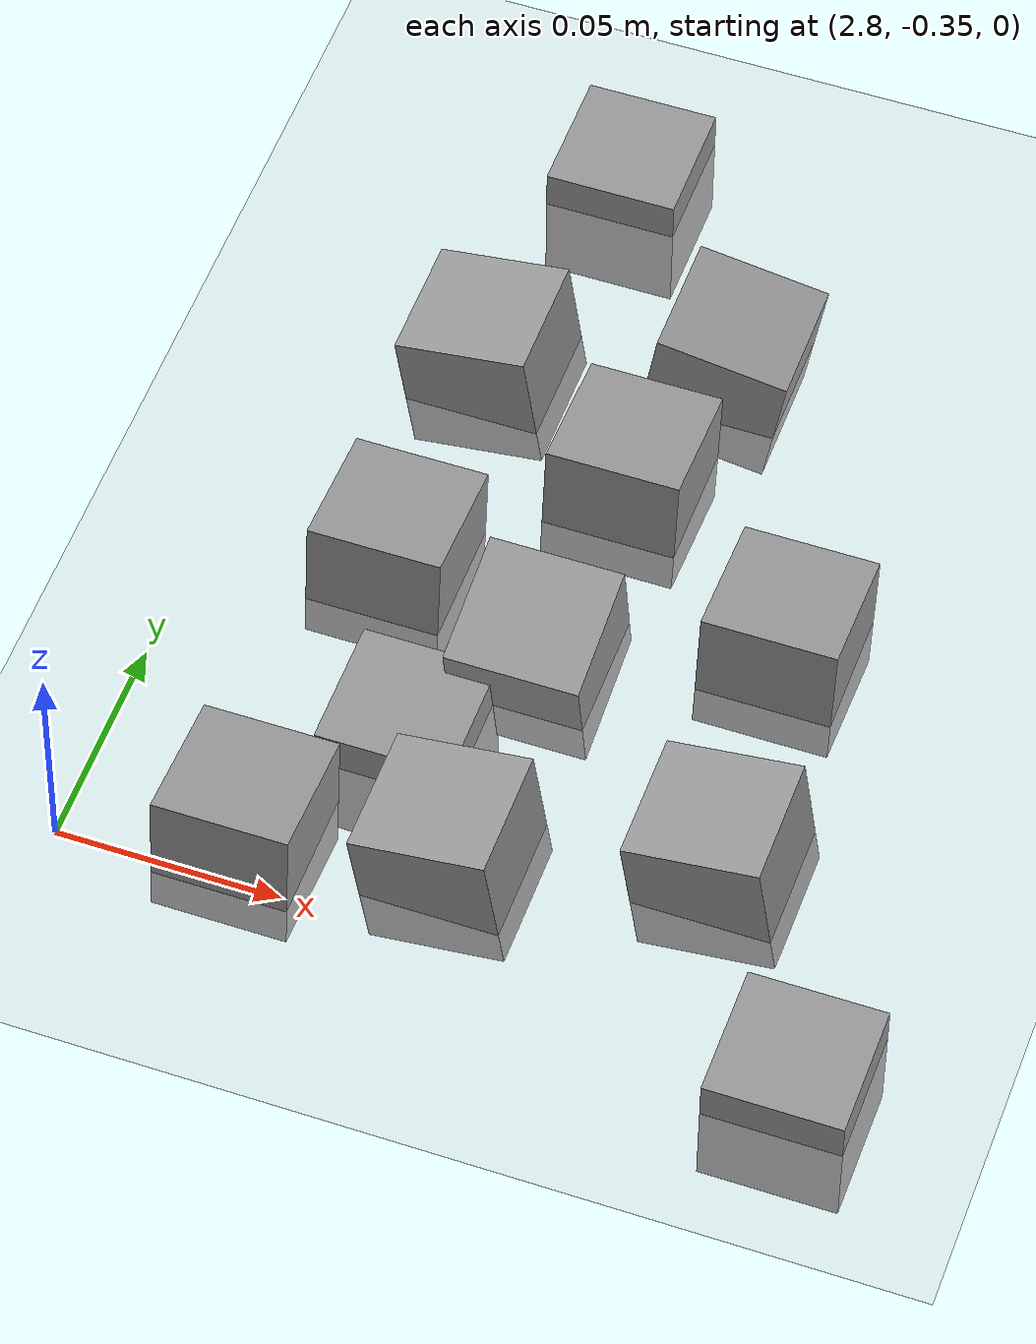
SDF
<sdf version="1.7">
 <world name="default">
  <model name="ground_plane">
   <static>1</static>
   <link name="link">
    <collision name="collision">
     <geometry><plane><normal>0 0 1</normal><size>100 100</size></plane></geometry>
     <surface><friction><ode><mu>100</mu><mu2>50</mu2></ode></friction></surface>
    </collision>
    <visual name="visual">
     <cast_shadows>0</cast_shadows>
     <geometry><plane><normal>0 0 1</normal><size>100 100</size></plane></geometry>
     <material>
      <script><uri>file://media/materials/scripts/gazebo.material</uri><name>Gazebo/Grey</name></script>
     </material>
    </visual>
   </link>
  </model>
  <model name="stone_road_9">
   <link name="link_0_clone_2_clone_2_clone">
    <inertial>
     <mass>1</mass>
     <inertia>
      <ixx>0.166667</ixx>
      <ixy>0</ixy>
      <ixz>0</ixz>
      <iyy>0.166667</iyy>
      <iyz>0</iyz>
      <izz>0.166667</izz>
     </inertia>
    </inertial>
    <pose>0.189059 0.051135 0.003778 0 -0.15 0</pose>
    <kinematic>1</kinematic>
    <visual name="visual">
     <geometry><box><size>0.03 0.03 0.03</size></box></geometry>
     <material>
      <lighting>1</lighting>
      <script><uri>file://media/materials/scripts/gazebo.material</uri><name>Gazebo/Grey</name></script>
      <shader type="pixel"><normal_map>__default__</normal_map></shader>
      <ambient>0.3 0.3 0.3 1</ambient>
      <diffuse>0.7 0.7 0.7 1</diffuse>
      <specular>0.01 0.01 0.01 1</specular>
      <emissive>0 0 0 1</emissive>
     </material>
    </visual>
    <collision name="collision">
     <geometry><box><size>0.03 0.03 0.03</size></box></geometry>
     <surface>
      <friction>
       <ode><mu>1</mu><mu2>1</mu2><fdir1>0 0 0</fdir1><slip1>0</slip1><slip2>0</slip2></ode>
       <torsional>
        <coefficient>1</coefficient>
        <patch_radius>0</patch_radius>
        <surface_radius>0</surface_radius>
        <use_patch_radius>1</use_patch_radius>
        <ode><slip>0</slip></ode>
       </torsional>
      </friction>
      <bounce><restitution_coefficient>0</restitution_coefficient><threshold>1e+06</threshold></bounce>
      <contact>
       <collide_without_contact>0</collide_without_contact>
       <collide_without_contact_bitmask>1</collide_without_contact_bitmask>
       <collide_bitmask>1</collide_bitmask>
       <ode>
        <soft_cfm>0</soft_cfm>
        <soft_erp>0.2</soft_erp>
        <kp>1e+13</kp>
        <kd>1</kd>
        <max_vel>0.01</max_vel>
        <min_depth>0</min_depth>
       </ode>
       <bullet>
        <split_impulse>1</split_impulse>
        <split_impulse_penetration_threshold>-0.01</split_impulse_penetration_threshold>
        <soft_cfm>0</soft_cfm>
        <soft_erp>0.2</soft_erp>
        <kp>1e+13</kp>
        <kd>1</kd>
       </bullet>
      </contact>
     </surface>
    </collision>
   </link>
   <link name="link_0_clone_2_clone_2_clone_10">
    <inertial>
     <mass>1</mass>
     <inertia>
      <ixx>0.166667</ixx>
      <ixy>0</ixy>
      <ixz>0</ixz>
      <iyy>0.166667</iyy>
      <iyz>0</iyz>
      <izz>0.166667</izz>
     </inertia>
    </inertial>
    <pose>0.09869 0.163436 0.003778 0 -0.15 0</pose>
    <kinematic>1</kinematic>
    <visual name="visual">
     <geometry><box><size>0.03 0.03 0.03</size></box></geometry>
     <material>
      <lighting>1</lighting>
      <script><uri>file://media/materials/scripts/gazebo.material</uri><name>Gazebo/Grey</name></script>
      <shader type="pixel"><normal_map>__default__</normal_map></shader>
      <ambient>0.3 0.3 0.3 1</ambient>
      <diffuse>0.7 0.7 0.7 1</diffuse>
      <specular>0.01 0.01 0.01 1</specular>
      <emissive>0 0 0 1</emissive>
     </material>
    </visual>
    <collision name="collision">
     <geometry><box><size>0.03 0.03 0.03</size></box></geometry>
     <surface>
      <friction>
       <ode><mu>1</mu><mu2>1</mu2><fdir1>0 0 0</fdir1><slip1>0</slip1><slip2>0</slip2></ode>
       <torsional>
        <coefficient>1</coefficient>
        <patch_radius>0</patch_radius>
        <surface_radius>0</surface_radius>
        <use_patch_radius>1</use_patch_radius>
        <ode><slip>0</slip></ode>
       </torsional>
      </friction>
      <bounce><restitution_coefficient>0</restitution_coefficient><threshold>1e+06</threshold></bounce>
      <contact>
       <collide_without_contact>0</collide_without_contact>
       <collide_without_contact_bitmask>1</collide_without_contact_bitmask>
       <collide_bitmask>1</collide_bitmask>
       <ode>
        <soft_cfm>0</soft_cfm>
        <soft_erp>0.2</soft_erp>
        <kp>1e+13</kp>
        <kd>1</kd>
        <max_vel>0.01</max_vel>
        <min_depth>0</min_depth>
       </ode>
       <bullet>
        <split_impulse>1</split_impulse>
        <split_impulse_penetration_threshold>-0.01</split_impulse_penetration_threshold>
        <soft_cfm>0</soft_cfm>
        <soft_erp>0.2</soft_erp>
        <kp>1e+13</kp>
        <kd>1</kd>
       </bullet>
      </contact>
     </surface>
    </collision>
   </link>
   <link name="link_0_clone_2_clone_2_clone_13_clone">
    <inertial>
     <mass>1</mass>
     <inertia>
      <ixx>0.166667</ixx>
      <ixy>0</ixy>
      <ixz>0</ixz>
      <iyy>0.166667</iyy>
      <iyz>0</iyz>
      <izz>0.166667</izz>
     </inertia>
    </inertial>
    <pose>0.138846 0.140956 0.003778 -0.1 0 0</pose>
    <kinematic>1</kinematic>
    <visual name="visual">
     <geometry><box><size>0.03 0.03 0.03</size></box></geometry>
     <material>
      <lighting>1</lighting>
      <script><uri>file://media/materials/scripts/gazebo.material</uri><name>Gazebo/Grey</name></script>
      <shader type="pixel"><normal_map>__default__</normal_map></shader>
      <ambient>0.3 0.3 0.3 1</ambient>
      <diffuse>0.7 0.7 0.7 1</diffuse>
      <specular>0.01 0.01 0.01 1</specular>
      <emissive>0 0 0 1</emissive>
     </material>
    </visual>
    <collision name="collision">
     <geometry><box><size>0.03 0.03 0.03</size></box></geometry>
     <surface>
      <friction>
       <ode><mu>1</mu><mu2>1</mu2><fdir1>0 0 0</fdir1><slip1>0</slip1><slip2>0</slip2></ode>
       <torsional>
        <coefficient>1</coefficient>
        <patch_radius>0</patch_radius>
        <surface_radius>0</surface_radius>
        <use_patch_radius>1</use_patch_radius>
        <ode><slip>0</slip></ode>
       </torsional>
      </friction>
      <bounce><restitution_coefficient>0</restitution_coefficient><threshold>1e+06</threshold></bounce>
      <contact>
       <collide_without_contact>0</collide_without_contact>
       <collide_without_contact_bitmask>1</collide_without_contact_bitmask>
       <collide_bitmask>1</collide_bitmask>
       <ode>
        <soft_cfm>0</soft_cfm>
        <soft_erp>0.2</soft_erp>
        <kp>1e+13</kp>
        <kd>1</kd>
        <max_vel>0.01</max_vel>
        <min_depth>0</min_depth>
       </ode>
       <bullet>
        <split_impulse>1</split_impulse>
        <split_impulse_penetration_threshold>-0.01</split_impulse_penetration_threshold>
        <soft_cfm>0</soft_cfm>
        <soft_erp>0.2</soft_erp>
        <kp>1e+13</kp>
        <kd>1</kd>
       </bullet>
      </contact>
     </surface>
    </collision>
   </link>
   <link name="link_0_clone_2_clone_2_clone_13_clone_clone">
    <inertial>
     <mass>1</mass>
     <inertia>
      <ixx>0.166667</ixx>
      <ixy>0</ixy>
      <ixz>0</ixz>
      <iyy>0.166667</iyy>
      <iyz>0</iyz>
      <izz>0.166667</izz>
     </inertia>
    </inertial>
    <pose>0.184456 0.108712 0.003778 -0.1 0 0</pose>
    <kinematic>1</kinematic>
    <visual name="visual">
     <geometry><box><size>0.03 0.03 0.03</size></box></geometry>
     <material>
      <lighting>1</lighting>
      <script><uri>file://media/materials/scripts/gazebo.material</uri><name>Gazebo/Grey</name></script>
      <shader type="pixel"><normal_map>__default__</normal_map></shader>
      <ambient>0.3 0.3 0.3 1</ambient>
      <diffuse>0.7 0.7 0.7 1</diffuse>
      <specular>0.01 0.01 0.01 1</specular>
      <emissive>0 0 0 1</emissive>
     </material>
    </visual>
    <collision name="collision">
     <geometry><box><size>0.03 0.03 0.03</size></box></geometry>
     <surface>
      <friction>
       <ode><mu>1</mu><mu2>1</mu2><fdir1>0 0 0</fdir1><slip1>0</slip1><slip2>0</slip2></ode>
       <torsional>
        <coefficient>1</coefficient>
        <patch_radius>0</patch_radius>
        <surface_radius>0</surface_radius>
        <use_patch_radius>1</use_patch_radius>
        <ode><slip>0</slip></ode>
       </torsional>
      </friction>
      <bounce><restitution_coefficient>0</restitution_coefficient><threshold>1e+06</threshold></bounce>
      <contact>
       <collide_without_contact>0</collide_without_contact>
       <collide_without_contact_bitmask>1</collide_without_contact_bitmask>
       <collide_bitmask>1</collide_bitmask>
       <ode>
        <soft_cfm>0</soft_cfm>
        <soft_erp>0.2</soft_erp>
        <kp>1e+13</kp>
        <kd>1</kd>
        <max_vel>0.01</max_vel>
        <min_depth>0</min_depth>
       </ode>
       <bullet>
        <split_impulse>1</split_impulse>
        <split_impulse_penetration_threshold>-0.01</split_impulse_penetration_threshold>
        <soft_cfm>0</soft_cfm>
        <soft_erp>0.2</soft_erp>
        <kp>1e+13</kp>
        <kd>1</kd>
       </bullet>
      </contact>
     </surface>
    </collision>
   </link>
   <link name="link_0_clone_2_clone_2_clone_13_clone_clone_0">
    <inertial>
     <mass>1</mass>
     <inertia>
      <ixx>0.166667</ixx>
      <ixy>0</ixy>
      <ixz>0</ixz>
      <iyy>0.166667</iyy>
      <iyz>0</iyz>
      <izz>0.166667</izz>
     </inertia>
    </inertial>
    <pose>0.094072 0.02539 0.003778 -0.1 0 0</pose>
    <kinematic>1</kinematic>
    <visual name="visual">
     <geometry><box><size>0.03 0.03 0.03</size></box></geometry>
     <material>
      <lighting>1</lighting>
      <script><uri>file://media/materials/scripts/gazebo.material</uri><name>Gazebo/Grey</name></script>
      <shader type="pixel"><normal_map>__default__</normal_map></shader>
      <ambient>0.3 0.3 0.3 1</ambient>
      <diffuse>0.7 0.7 0.7 1</diffuse>
      <specular>0.01 0.01 0.01 1</specular>
      <emissive>0 0 0 1</emissive>
     </material>
    </visual>
    <collision name="collision">
     <geometry><box><size>0.03 0.03 0.03</size></box></geometry>
     <surface>
      <friction>
       <ode><mu>1</mu><mu2>1</mu2><fdir1>0 0 0</fdir1><slip1>0</slip1><slip2>0</slip2></ode>
       <torsional>
        <coefficient>1</coefficient>
        <patch_radius>0</patch_radius>
        <surface_radius>0</surface_radius>
        <use_patch_radius>1</use_patch_radius>
        <ode><slip>0</slip></ode>
       </torsional>
      </friction>
      <bounce><restitution_coefficient>0</restitution_coefficient><threshold>1e+06</threshold></bounce>
      <contact>
       <collide_without_contact>0</collide_without_contact>
       <collide_without_contact_bitmask>1</collide_without_contact_bitmask>
       <collide_bitmask>1</collide_bitmask>
       <ode>
        <soft_cfm>0</soft_cfm>
        <soft_erp>0.2</soft_erp>
        <kp>1e+13</kp>
        <kd>1</kd>
        <max_vel>0.01</max_vel>
        <min_depth>0</min_depth>
       </ode>
       <bullet>
        <split_impulse>1</split_impulse>
        <split_impulse_penetration_threshold>-0.01</split_impulse_penetration_threshold>
        <soft_cfm>0</soft_cfm>
        <soft_erp>0.2</soft_erp>
        <kp>1e+13</kp>
        <kd>1</kd>
       </bullet>
      </contact>
     </surface>
    </collision>
   </link>
   <link name="link_0_clone_2_clone_2_clone_13_clone_clone_1">
    <inertial>
     <mass>1</mass>
     <inertia>
      <ixx>0.166667</ixx>
      <ixy>0</ixy>
      <ixz>0</ixz>
      <iyy>0.166667</iyy>
      <iyz>0</iyz>
      <izz>0.166667</izz>
     </inertia>
    </inertial>
    <pose>0.098415 0.103772 0.003778 -0.1 0 0</pose>
    <kinematic>1</kinematic>
    <visual name="visual">
     <geometry><box><size>0.03 0.03 0.03</size></box></geometry>
     <material>
      <lighting>1</lighting>
      <script><uri>file://media/materials/scripts/gazebo.material</uri><name>Gazebo/Grey</name></script>
      <shader type="pixel"><normal_map>__default__</normal_map></shader>
      <ambient>0.3 0.3 0.3 1</ambient>
      <diffuse>0.7 0.7 0.7 1</diffuse>
      <specular>0.01 0.01 0.01 1</specular>
      <emissive>0 0 0 1</emissive>
     </material>
    </visual>
    <collision name="collision">
     <geometry><box><size>0.03 0.03 0.03</size></box></geometry>
     <surface>
      <friction>
       <ode><mu>1</mu><mu2>1</mu2><fdir1>0 0 0</fdir1><slip1>0</slip1><slip2>0</slip2></ode>
       <torsional>
        <coefficient>1</coefficient>
        <patch_radius>0</patch_radius>
        <surface_radius>0</surface_radius>
        <use_patch_radius>1</use_patch_radius>
        <ode><slip>0</slip></ode>
       </torsional>
      </friction>
      <bounce><restitution_coefficient>0</restitution_coefficient><threshold>1e+06</threshold></bounce>
      <contact>
       <collide_without_contact>0</collide_without_contact>
       <collide_without_contact_bitmask>1</collide_without_contact_bitmask>
       <collide_bitmask>1</collide_bitmask>
       <ode>
        <soft_cfm>0</soft_cfm>
        <soft_erp>0.2</soft_erp>
        <kp>1e+13</kp>
        <kd>1</kd>
        <max_vel>0.01</max_vel>
        <min_depth>0</min_depth>
       </ode>
       <bullet>
        <split_impulse>1</split_impulse>
        <split_impulse_penetration_threshold>-0.01</split_impulse_penetration_threshold>
        <soft_cfm>0</soft_cfm>
        <soft_erp>0.2</soft_erp>
        <kp>1e+13</kp>
        <kd>1</kd>
       </bullet>
      </contact>
     </surface>
    </collision>
   </link>
   <link name="link_0_clone_2_clone_2_clone_13_clone_clone_16">
    <inertial>
     <mass>1</mass>
     <inertia>
      <ixx>0.166667</ixx>
      <ixy>0</ixy>
      <ixz>0</ixz>
      <iyy>0.166667</iyy>
      <iyz>0</iyz>
      <izz>0.166667</izz>
     </inertia>
    </inertial>
    <pose>0.108948 0.22849 -0.006222 0 -0 0</pose>
    <kinematic>1</kinematic>
    <visual name="visual">
     <geometry><box><size>0.03 0.03 0.03</size></box></geometry>
     <material>
      <lighting>1</lighting>
      <script><uri>file://media/materials/scripts/gazebo.material</uri><name>Gazebo/Grey</name></script>
      <shader type="pixel"><normal_map>__default__</normal_map></shader>
      <ambient>0.3 0.3 0.3 1</ambient>
      <diffuse>0.7 0.7 0.7 1</diffuse>
      <specular>0.01 0.01 0.01 1</specular>
      <emissive>0 0 0 1</emissive>
     </material>
    </visual>
    <collision name="collision">
     <geometry><box><size>0.03 0.03 0.03</size></box></geometry>
     <surface>
      <friction>
       <ode><mu>1</mu><mu2>1</mu2><fdir1>0 0 0</fdir1><slip1>0</slip1><slip2>0</slip2></ode>
       <torsional>
        <coefficient>1</coefficient>
        <patch_radius>0</patch_radius>
        <surface_radius>0</surface_radius>
        <use_patch_radius>1</use_patch_radius>
        <ode><slip>0</slip></ode>
       </torsional>
      </friction>
      <bounce><restitution_coefficient>0</restitution_coefficient><threshold>1e+06</threshold></bounce>
      <contact>
       <collide_without_contact>0</collide_without_contact>
       <collide_without_contact_bitmask>1</collide_without_contact_bitmask>
       <collide_bitmask>1</collide_bitmask>
       <ode>
        <soft_cfm>0</soft_cfm>
        <soft_erp>0.2</soft_erp>
        <kp>1e+13</kp>
        <kd>1</kd>
        <max_vel>0.01</max_vel>
        <min_depth>0</min_depth>
       </ode>
       <bullet>
        <split_impulse>1</split_impulse>
        <split_impulse_penetration_threshold>-0.01</split_impulse_penetration_threshold>
        <soft_cfm>0</soft_cfm>
        <soft_erp>0.2</soft_erp>
        <kp>1e+13</kp>
        <kd>1</kd>
       </bullet>
      </contact>
     </surface>
    </collision>
   </link>
   <link name="link_0_clone_2_clone_2_clone_13_clone_clone_16_clone_19">
    <inertial>
     <mass>1</mass>
     <inertia>
      <ixx>0.166667</ixx>
      <ixy>0</ixy>
      <ixz>0</ixz>
      <iyy>0.166667</iyy>
      <iyz>0</iyz>
      <izz>0.166667</izz>
     </inertia>
    </inertial>
    <pose>0.219442 0.006622 -0.006222 0 -0 0</pose>
    <kinematic>1</kinematic>
    <visual name="visual">
     <geometry><box><size>0.03 0.03 0.03</size></box></geometry>
     <material>
      <lighting>1</lighting>
      <script><uri>file://media/materials/scripts/gazebo.material</uri><name>Gazebo/Grey</name></script>
      <shader type="pixel"><normal_map>__default__</normal_map></shader>
      <ambient>0.3 0.3 0.3 1</ambient>
      <diffuse>0.7 0.7 0.7 1</diffuse>
      <specular>0.01 0.01 0.01 1</specular>
      <emissive>0 0 0 1</emissive>
     </material>
    </visual>
    <collision name="collision">
     <geometry><box><size>0.03 0.03 0.03</size></box></geometry>
     <surface>
      <friction>
       <ode><mu>1</mu><mu2>1</mu2><fdir1>0 0 0</fdir1><slip1>0</slip1><slip2>0</slip2></ode>
       <torsional>
        <coefficient>1</coefficient>
        <patch_radius>0</patch_radius>
        <surface_radius>0</surface_radius>
        <use_patch_radius>1</use_patch_radius>
        <ode><slip>0</slip></ode>
       </torsional>
      </friction>
      <bounce><restitution_coefficient>0</restitution_coefficient><threshold>1e+06</threshold></bounce>
      <contact>
       <collide_without_contact>0</collide_without_contact>
       <collide_without_contact_bitmask>1</collide_without_contact_bitmask>
       <collide_bitmask>1</collide_bitmask>
       <ode>
        <soft_cfm>0</soft_cfm>
        <soft_erp>0.2</soft_erp>
        <kp>1e+13</kp>
        <kd>1</kd>
        <max_vel>0.01</max_vel>
        <min_depth>0</min_depth>
       </ode>
       <bullet>
        <split_impulse>1</split_impulse>
        <split_impulse_penetration_threshold>-0.01</split_impulse_penetration_threshold>
        <soft_cfm>0</soft_cfm>
        <soft_erp>0.2</soft_erp>
        <kp>1e+13</kp>
        <kd>1</kd>
       </bullet>
      </contact>
     </surface>
    </collision>
   </link>
   <link name="link_0_clone_2_clone_2_clone_13_clone_clone_16_clone_20">
    <inertial>
     <mass>1</mass>
     <inertia>
      <ixx>0.166667</ixx>
      <ixy>0</ixy>
      <ixz>0</ixz>
      <iyy>0.166667</iyy>
      <iyz>0</iyz>
      <izz>0.166667</izz>
     </inertia>
    </inertial>
    <pose>0.115763 0.063063 -0.006222 0 -0 0</pose>
    <kinematic>1</kinematic>
    <visual name="visual">
     <geometry><box><size>0.03 0.03 0.03</size></box></geometry>
     <material>
      <lighting>1</lighting>
      <script><uri>file://media/materials/scripts/gazebo.material</uri><name>Gazebo/Grey</name></script>
      <shader type="pixel"><normal_map>__default__</normal_map></shader>
      <ambient>0.3 0.3 0.3 1</ambient>
      <diffuse>0.7 0.7 0.7 1</diffuse>
      <specular>0.01 0.01 0.01 1</specular>
      <emissive>0 0 0 1</emissive>
     </material>
    </visual>
    <collision name="collision">
     <geometry><box><size>0.03 0.03 0.03</size></box></geometry>
     <surface>
      <friction>
       <ode><mu>1</mu><mu2>1</mu2><fdir1>0 0 0</fdir1><slip1>0</slip1><slip2>0</slip2></ode>
       <torsional>
        <coefficient>1</coefficient>
        <patch_radius>0</patch_radius>
        <surface_radius>0</surface_radius>
        <use_patch_radius>1</use_patch_radius>
        <ode><slip>0</slip></ode>
       </torsional>
      </friction>
      <bounce><restitution_coefficient>0</restitution_coefficient><threshold>1e+06</threshold></bounce>
      <contact>
       <collide_without_contact>0</collide_without_contact>
       <collide_without_contact_bitmask>1</collide_without_contact_bitmask>
       <collide_bitmask>1</collide_bitmask>
       <ode>
        <soft_cfm>0</soft_cfm>
        <soft_erp>0.2</soft_erp>
        <kp>1e+13</kp>
        <kd>1</kd>
        <max_vel>0.01</max_vel>
        <min_depth>0</min_depth>
       </ode>
       <bullet>
        <split_impulse>1</split_impulse>
        <split_impulse_penetration_threshold>-0.01</split_impulse_penetration_threshold>
        <soft_cfm>0</soft_cfm>
        <soft_erp>0.2</soft_erp>
        <kp>1e+13</kp>
        <kd>1</kd>
       </bullet>
      </contact>
     </surface>
    </collision>
   </link>
   <link name="link_0_clone_2_clone_2_clone_6">
    <inertial>
     <mass>1</mass>
     <inertia>
      <ixx>0.166667</ixx>
      <ixy>0</ixy>
      <ixz>0</ixz>
      <iyy>0.166667</iyy>
      <iyz>0</iyz>
      <izz>0.166667</izz>
     </inertia>
    </inertial>
    <pose>0.136141 0.034017 0.003778 0 -0.15 0</pose>
    <kinematic>1</kinematic>
    <visual name="visual">
     <geometry><box><size>0.03 0.03 0.03</size></box></geometry>
     <material>
      <lighting>1</lighting>
      <script><uri>file://media/materials/scripts/gazebo.material</uri><name>Gazebo/Grey</name></script>
      <shader type="pixel"><normal_map>__default__</normal_map></shader>
      <ambient>0.3 0.3 0.3 1</ambient>
      <diffuse>0.7 0.7 0.7 1</diffuse>
      <specular>0.01 0.01 0.01 1</specular>
      <emissive>0 0 0 1</emissive>
     </material>
    </visual>
    <collision name="collision">
     <geometry><box><size>0.03 0.03 0.03</size></box></geometry>
     <surface>
      <friction>
       <ode><mu>1</mu><mu2>1</mu2><fdir1>0 0 0</fdir1><slip1>0</slip1><slip2>0</slip2></ode>
       <torsional>
        <coefficient>1</coefficient>
        <patch_radius>0</patch_radius>
        <surface_radius>0</surface_radius>
        <use_patch_radius>1</use_patch_radius>
        <ode><slip>0</slip></ode>
       </torsional>
      </friction>
      <bounce><restitution_coefficient>0</restitution_coefficient><threshold>1e+06</threshold></bounce>
      <contact>
       <collide_without_contact>0</collide_without_contact>
       <collide_without_contact_bitmask>1</collide_without_contact_bitmask>
       <collide_bitmask>1</collide_bitmask>
       <ode>
        <soft_cfm>0</soft_cfm>
        <soft_erp>0.2</soft_erp>
        <kp>1e+13</kp>
        <kd>1</kd>
        <max_vel>0.01</max_vel>
        <min_depth>0</min_depth>
       </ode>
       <bullet>
        <split_impulse>1</split_impulse>
        <split_impulse_penetration_threshold>-0.01</split_impulse_penetration_threshold>
        <soft_cfm>0</soft_cfm>
        <soft_erp>0.2</soft_erp>
        <kp>1e+13</kp>
        <kd>1</kd>
       </bullet>
      </contact>
     </surface>
    </collision>
   </link>
   <link name="link_0_clone_2_clone_9">
    <inertial>
     <mass>1</mass>
     <inertia>
      <ixx>0.166667</ixx>
      <ixy>0</ixy>
      <ixz>0</ixz>
      <iyy>0.166667</iyy>
      <iyz>0</iyz>
      <izz>0.166667</izz>
     </inertia>
    </inertial>
    <pose>0.148876 0.179752 0.003778 0 0.15 0</pose>
    <kinematic>1</kinematic>
    <visual name="visual">
     <geometry><box><size>0.03 0.03 0.03</size></box></geometry>
     <material>
      <lighting>1</lighting>
      <script><uri>file://media/materials/scripts/gazebo.material</uri><name>Gazebo/Grey</name></script>
      <shader type="pixel"><normal_map>__default__</normal_map></shader>
      <ambient>0.3 0.3 0.3 1</ambient>
      <diffuse>0.7 0.7 0.7 1</diffuse>
      <specular>0.01 0.01 0.01 1</specular>
      <emissive>0 0 0 1</emissive>
     </material>
    </visual>
    <collision name="collision">
     <geometry><box><size>0.03 0.03 0.03</size></box></geometry>
     <surface>
      <friction>
       <ode><mu>1</mu><mu2>1</mu2><fdir1>0 0 0</fdir1><slip1>0</slip1><slip2>0</slip2></ode>
       <torsional>
        <coefficient>1</coefficient>
        <patch_radius>0</patch_radius>
        <surface_radius>0</surface_radius>
        <use_patch_radius>1</use_patch_radius>
        <ode><slip>0</slip></ode>
       </torsional>
      </friction>
      <bounce><restitution_coefficient>0</restitution_coefficient><threshold>1e+06</threshold></bounce>
      <contact>
       <collide_without_contact>0</collide_without_contact>
       <collide_without_contact_bitmask>1</collide_without_contact_bitmask>
       <collide_bitmask>1</collide_bitmask>
       <ode>
        <soft_cfm>0</soft_cfm>
        <soft_erp>0.2</soft_erp>
        <kp>1e+13</kp>
        <kd>1</kd>
        <max_vel>0.01</max_vel>
        <min_depth>0</min_depth>
       </ode>
       <bullet>
        <split_impulse>1</split_impulse>
        <split_impulse_penetration_threshold>-0.01</split_impulse_penetration_threshold>
        <soft_cfm>0</soft_cfm>
        <soft_erp>0.2</soft_erp>
        <kp>1e+13</kp>
        <kd>1</kd>
       </bullet>
      </contact>
     </surface>
    </collision>
   </link>
   <link name="link_0_clone_8">
    <inertial>
     <mass>1</mass>
     <inertia>
      <ixx>0.166667</ixx>
      <ixy>0</ixy>
      <ixz>0</ixz>
      <iyy>0.166667</iyy>
      <iyz>0</iyz>
      <izz>0.166667</izz>
     </inertia>
    </inertial>
    <pose>0.135749 0.089175 0.003778 0.2 -0 0</pose>
    <kinematic>1</kinematic>
    <visual name="visual">
     <geometry><box><size>0.03 0.03 0.03</size></box></geometry>
     <material>
      <lighting>1</lighting>
      <script><uri>file://media/materials/scripts/gazebo.material</uri><name>Gazebo/Grey</name></script>
      <shader type="pixel"><normal_map>__default__</normal_map></shader>
      <ambient>0.3 0.3 0.3 1</ambient>
      <diffuse>0.7 0.7 0.7 1</diffuse>
      <specular>0.01 0.01 0.01 1</specular>
      <emissive>0 0 0 1</emissive>
     </material>
    </visual>
    <collision name="collision">
     <geometry><box><size>0.03 0.03 0.03</size></box></geometry>
     <surface>
      <friction>
       <ode><mu>1</mu><mu2>1</mu2><fdir1>0 0 0</fdir1><slip1>0</slip1><slip2>0</slip2></ode>
       <torsional>
        <coefficient>1</coefficient>
        <patch_radius>0</patch_radius>
        <surface_radius>0</surface_radius>
        <use_patch_radius>1</use_patch_radius>
        <ode><slip>0</slip></ode>
       </torsional>
      </friction>
      <bounce><restitution_coefficient>0</restitution_coefficient><threshold>1e+06</threshold></bounce>
      <contact>
       <collide_without_contact>0</collide_without_contact>
       <collide_without_contact_bitmask>1</collide_without_contact_bitmask>
       <collide_bitmask>1</collide_bitmask>
       <ode>
        <soft_cfm>0</soft_cfm>
        <soft_erp>0.2</soft_erp>
        <kp>1e+13</kp>
        <kd>1</kd>
        <max_vel>0.01</max_vel>
        <min_depth>0</min_depth>
       </ode>
       <bullet>
        <split_impulse>1</split_impulse>
        <split_impulse_penetration_threshold>-0.01</split_impulse_penetration_threshold>
        <soft_cfm>0</soft_cfm>
        <soft_erp>0.2</soft_erp>
        <kp>1e+13</kp>
        <kd>1</kd>
       </bullet>
      </contact>
     </surface>
    </collision>
   </link>
   <static>0</static>
   <pose>2.743 -0.362549 -0 0 -0 0</pose>
  </model>
 </world>
</sdf>
